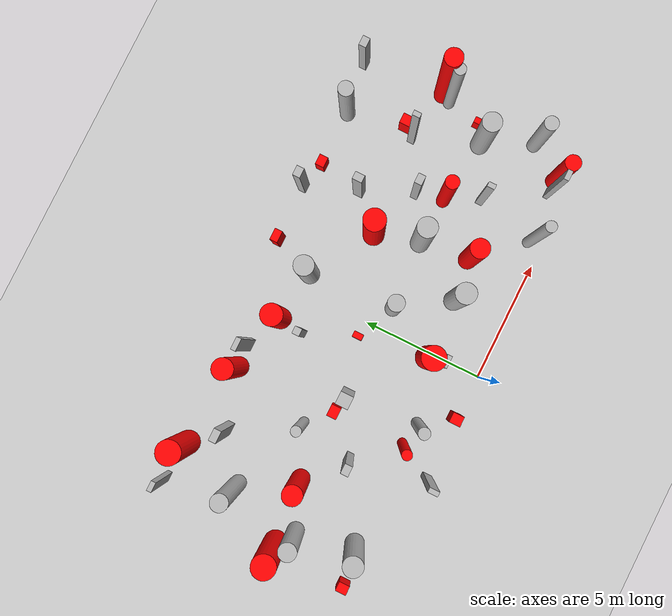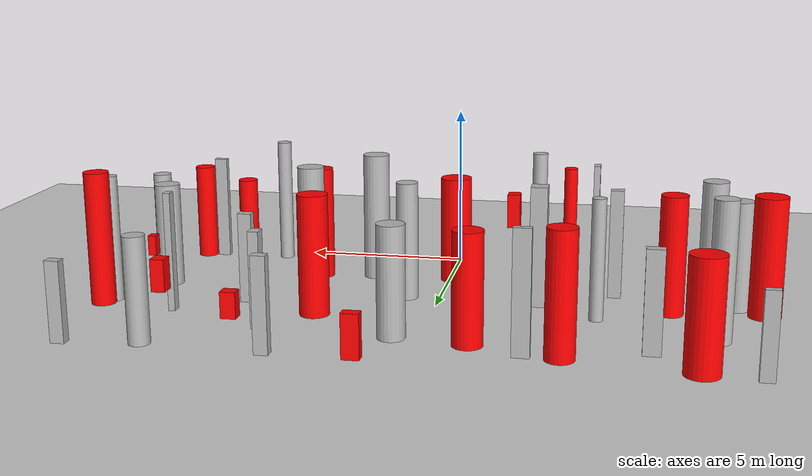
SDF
<sdf version="1.7">
 <world name="default">
  <model name="ground_plane">
   <static>1</static>
   <link name="link">
    <collision name="collision">
     <geometry><plane><normal>0 0 1</normal><size>100 100</size></plane></geometry>
     <surface>
      <contact><collide_bitmask>65535</collide_bitmask></contact>
      <friction><ode><mu>100</mu><mu2>50</mu2></ode></friction>
     </surface>
    </collision>
    <visual name="visual">
     <cast_shadows>0</cast_shadows>
     <geometry><plane><normal>0 0 1</normal><size>100 100</size></plane></geometry>
     <material>
      <script><uri>file://media/materials/scripts/gazebo.material</uri><name>Gazebo/Grey</name></script>
     </material>
    </visual>
   </link>
  </model>
  <model name="cylinder_0_0.7_0.7_3.5">
   <static>true</static>
   <pose>0.9762700785464951 4.30378732744839 1.7724415914984484 0 0 0</pose>
   <link name="link">
    <visual name="visual">
     <geometry>
      <cylinder><radius>0.3270964398016714</radius><length>3.5448831829968968</length></cylinder>
     </geometry>
    </visual>
   </link>
  </model>
  <model name="cylinder_2_0.4_0.4_3.9">
   <static>true</static>
   <pose>5.834500761653292 0.5778983950580887 1.9627983191463305 0 0 0</pose>
   <link name="link">
    <visual name="visual">
     <geometry>
      <cylinder><radius>0.2213108174593661</radius><length>3.925596638292661</length></cylinder>
     </geometry>
    </visual>
   </link>
  </model>
  <model name="cylinder_4_0.5_0.5_3.8">
   <static>true</static>
   <pose>9.572366844655281 5.983171284334471 1.8902645881432276 0 0 0</pose>
   <link name="link">
    <visual name="visual">
     <geometry>
      <cylinder><radius>0.23548232776067998</radius><length>3.7805291762864552</length></cylinder>
     </geometry>
    </visual>
   </link>
  </model>
  <model name="cylinder_6_0.4_0.4_3.6">
   <static>true</static>
   <pose>-4.70888775790746 5.484673788684333 1.7842169744343241 0 0 0</pose>
   <link name="link">
    <visual name="visual">
     <geometry>
      <cylinder><radius>0.20563694013090655</radius><length>3.5684339488686483</length></cylinder>
     </geometry>
    </visual>
   </link>
  </model>
  <model name="cylinder_7_0.8_0.8_3.9">
   <static>true</static>
   <pose>2.352709941517542 2.2419144544484286 1.9718740392573122 0 0 0</pose>
   <link name="link">
    <visual name="visual">
     <geometry>
      <cylinder><radius>0.404546089731045</radius><length>3.9437480785146244</length></cylinder>
     </geometry>
    </visual>
   </link>
  </model>
  <model name="cylinder_9_0.5_0.5_4.0">
   <static>true</static>
   <pose>-2.725784581147548 1.4039354083575937 1.994186919029613 0 0 0</pose>
   <link name="link">
    <visual name="visual">
     <geometry>
      <cylinder><radius>0.23061344322440844</radius><length>3.988373838059226</length></cylinder>
     </geometry>
    </visual>
   </link>
  </model>
  <model name="cylinder_11_0.7_0.7_4.0">
   <static>true</static>
   <pose>-8.057974484138775 6.758898149976076 1.988229732506698 0 0 0</pose>
   <link name="link">
    <visual name="visual">
     <geometry>
      <cylinder><radius>0.3405953604943105</radius><length>3.976459465013396</length></cylinder>
     </geometry>
    </visual>
   </link>
  </model>
  <model name="cylinder_12_0.6_0.6_3.0">
   <static>true</static>
   <pose>9.535221763806742 2.0969103949009202 1.5195938961271604 0 0 0</pose>
   <link name="link">
    <visual name="visual">
     <geometry>
      <cylinder><radius>0.2848420887729229</radius><length>3.039187792254321</length></cylinder>
     </geometry>
    </visual>
   </link>
  </model>
  <model name="cylinder_14_0.7_0.7_3.3">
   <static>true</static>
   <pose>-8.717050073024312 3.849442387400398 1.6326947454697227 0 0 0</pose>
   <link name="link">
    <visual name="visual">
     <geometry>
      <cylinder><radius>0.3569744160400099</radius><length>3.2653894909394454</length></cylinder>
     </geometry>
    </visual>
   </link>
  </model>
  <model name="cylinder_15_0.8_0.8_3.3">
   <static>true</static>
   <pose>-8.121189784831166 1.5189299111235854 1.6592844762256618 0 0 0</pose>
   <link name="link">
    <visual name="visual">
     <geometry>
      <cylinder><radius>0.4002231139891045</radius><length>3.3185689524513236</length></cylinder>
     </geometry>
    </visual>
   </link>
  </model>
  <model name="cylinder_19_0.8_0.8_4.0">
   <static>true</static>
   <pose>3.850631801555318 4.50508559639281 1.9780418173616119 0 0 0</pose>
   <link name="link">
    <visual name="visual">
     <geometry>
      <cylinder><radius>0.3931970597688912</radius><length>3.9560836347232238</length></cylinder>
     </geometry>
    </visual>
   </link>
  </model>
  <model name="cylinder_23_0.6_0.6_3.0">
   <static>true</static>
   <pose>7.327646518572585 9.510430100057718 1.505857042092501 0 0 0</pose>
   <link name="link">
    <visual name="visual">
     <geometry>
      <cylinder><radius>0.30799341934350916</radius><length>3.011714084185002</length></cylinder>
     </geometry>
    </visual>
   </link>
  </model>
  <model name="cylinder_25_0.8_0.8_3.2">
   <static>true</static>
   <pose>8.561625869311818 4.088288038470655 1.5823470782489564 0 0 0</pose>
   <link name="link">
    <visual name="visual">
     <geometry>
      <cylinder><radius>0.386443520449929</radius><length>3.1646941564979127</length></cylinder>
     </geometry>
    </visual>
   </link>
  </model>
  <model name="cylinder_28_0.8_0.8_3.2">
   <static>true</static>
   <pose>0.731584222174444 7.933425860806842 1.608448492199237 0 0 0</pose>
   <link name="link">
    <visual name="visual">
     <geometry>
      <cylinder><radius>0.3989234609300303</radius><length>3.216896984398474</length></cylinder>
     </geometry>
    </visual>
   </link>
  </model>
  <model name="box_2_0.5_0.2_3.5">
   <static>true</static>
   <pose>-2.8877452430008876 8.80863890505626 1.7486636198505474 0 0 0</pose>
   <link name="link">
    <visual name="visual"><geometry><box><size>0.5 0.2 3.5</size></box></geometry></visual>
   </link>
  </model>
  <model name="box_4_0.4_0.3_2.7">
   <static>true</static>
   <pose>5.5739079188220675 5.5481512369750625 1.3738131379325615 0 0 0</pose>
   <link name="link">
    <visual name="visual"><geometry><box><size>0.4 0.3 2.7</size></box></geometry></visual>
   </link>
  </model>
  <model name="box_5_0.5_0.3_2.9">
   <static>true</static>
   <pose>-6.257382164983105 8.079679098564739 1.4569114216457657 0 0 0</pose>
   <link name="link">
    <visual name="visual"><geometry><box><size>0.5 0.3 2.9</size></box></geometry></visual>
   </link>
  </model>
  <model name="box_7_0.4_0.3_2.3">
   <static>true</static>
   <pose>9.485124256361004 9.806900031217879 1.1629544260466054 0 0 0</pose>
   <link name="link">
    <visual name="visual"><geometry><box><size>0.4 0.3 2.3</size></box></geometry></visual>
   </link>
  </model>
  <model name="box_8_0.4_0.3_3.3">
   <static>true</static>
   <pose>-5.17162759846852 3.2500914306535194 1.6658591175591877 0 0 0</pose>
   <link name="link">
    <visual name="visual"><geometry><box><size>0.4 0.3 3.3</size></box></geometry></visual>
   </link>
  </model>
  <model name="box_10_0.3_0.4_2.8">
   <static>true</static>
   <pose>4.614181982549523 7.6344042466767945 1.3790568960774285 0 0 0</pose>
   <link name="link">
    <visual name="visual"><geometry><box><size>0.3 0.4 2.8</size></box></geometry></visual>
   </link>
  </model>
  <model name="box_13_0.5_0.5_3.6">
   <static>true</static>
   <pose>-2.962140076139148 4.428133359199048 1.8130538632474607 0 0 0</pose>
   <link name="link">
    <visual name="visual"><geometry><box><size>0.5 0.5 3.6</size></box></geometry></visual>
   </link>
  </model>
  <model name="box_14_0.5_0.2_2.3">
   <static>true</static>
   <pose>-0.0444618434931634 1.6216385934412614 1.1690254061291614 0 0 0</pose>
   <link name="link">
    <visual name="visual"><geometry><box><size>0.5 0.2 2.3</size></box></geometry></visual>
   </link>
  </model>
  <model name="box_15_0.3_0.3_2.5">
   <static>true</static>
   <pose>-1.525872930890543 7.142498350091348 1.271252076761864 0 0 0</pose>
   <link name="link">
    <visual name="visual"><geometry><box><size>0.3 0.3 2.5</size></box></geometry></visual>
   </link>
  </model>
  <model name="box_16_0.2_0.3_3.1">
   <static>true</static>
   <pose>6.448134767113807 3.068423222272738 1.5369230010823904 0 0 0</pose>
   <link name="link">
    <visual name="visual"><geometry><box><size>0.2 0.3 3.1</size></box></geometry></visual>
   </link>
  </model>
  <model name="box_18_0.4_0.3_2.7">
   <static>true</static>
   <pose>3.815695523130591 9.746975141479364 1.3645446259967866 0 0 0</pose>
   <link name="link">
    <visual name="visual"><geometry><box><size>0.4 0.3 2.7</size></box></geometry></visual>
   </link>
  </model>
  <model name="box_19_0.4_0.2_2.4">
   <static>true</static>
   <pose>-9.063872905756226 9.414628855412658 1.1785799680576563 0 0 0</pose>
   <link name="link">
    <visual name="visual"><geometry><box><size>0.4 0.2 2.4</size></box></geometry></visual>
   </link>
  </model>
  <model name="box_24_0.2_0.3_3.5">
   <static>true</static>
   <pose>7.476643566694364 6.679632877532637 1.7712254629659103 0 0 0</pose>
   <link name="link">
    <visual name="visual"><geometry><box><size>0.2 0.3 3.5</size></box></geometry></visual>
   </link>
  </model>
  <model name="box_26_0.2_0.4_3.4">
   <static>true</static>
   <pose>-4.467005395816209 0.1268583864760835 1.706410577667011 0 0 0</pose>
   <link name="link">
    <visual name="visual"><geometry><box><size>0.2 0.4 3.4</size></box></geometry></visual>
   </link>
  </model>
  <model name="box_27_0.4_0.2_3.3">
   <static>true</static>
   <pose>7.972753368165325 0.7434025589741484 1.6736532695846353 0 0 0</pose>
   <link name="link">
    <visual name="visual"><geometry><box><size>0.4 0.2 3.3</size></box></geometry></visual>
   </link>
  </model>
  <model name="dynamic_cylinder_0_0.8_0.8_3.5">
   <static>true</static>
   <pose>4.094643888333403 2.459366459566086 1.7438822797488533 0 0 0</pose>
   <link name="link">
    <visual name="visual">
     <geometry>
      <cylinder><radius>0.3818785718679624</radius><length>3.4877645594977067</length></cylinder>
     </geometry>
     <material><ambient>1 0 0 1</ambient><diffuse>1 0 0 1</diffuse><specular>0.5 0.5 0.5 1</specular></material>
    </visual>
   </link>
   <plugin name="obstacle_motion" filename="/home/he/quad/navigation/DRL-robot-navigation/catkin_ws/src/multi_robot_scenario/plugins/libobstaclePathPlugin.so">
    <orientation>false</orientation>
    <loop>0</loop>
    <velocity>0.01331611324646731</velocity>
    <path>
     <waypoint>4.094643888333403 2.459366459566086 1.7438822797488533</waypoint>
     <waypoint>9.165586676842118 6.485329394064571 1.7438822797488533</waypoint>
    </path>
   </plugin>
  </model>
  <model name="dynamic_cylinder_1_0.7_0.7_4.0">
   <static>true</static>
   <pose>9.781761507137073 6.362021000480581 1.9835233959896614 0 0 0</pose>
   <link name="link">
    <visual name="visual">
     <geometry>
      <cylinder><radius>0.36669878758172225</radius><length>3.967046791979323</length></cylinder>
     </geometry>
     <material><ambient>1 0 0 1</ambient><diffuse>1 0 0 1</diffuse><specular>0.5 0.5 0.5 1</specular></material>
    </visual>
   </link>
   <plugin name="obstacle_motion" filename="/home/he/quad/navigation/DRL-robot-navigation/catkin_ws/src/multi_robot_scenario/plugins/libobstaclePathPlugin.so">
    <orientation>false</orientation>
    <loop>0</loop>
    <velocity>0.8748423619393388</velocity>
    <path>
     <waypoint>9.781761507137073 6.362021000480581 1.9835233959896614</waypoint>
     <waypoint>-6.959059499111559 5.681172289343081 1.9835233959896614</waypoint>
    </path>
   </plugin>
  </model>
  <model name="dynamic_cylinder_3_0.9_0.9_3.2">
   <static>true</static>
   <pose>-1.3963828472189181 8.181855140571265 1.6009832142121017 0 0 0</pose>
   <link name="link">
    <visual name="visual">
     <geometry>
      <cylinder><radius>0.43374617735747417</radius><length>3.2019664284242033</length></cylinder>
     </geometry>
     <material><ambient>1 0 0 1</ambient><diffuse>1 0 0 1</diffuse><specular>0.5 0.5 0.5 1</specular></material>
    </visual>
   </link>
   <plugin name="obstacle_motion" filename="/home/he/quad/navigation/DRL-robot-navigation/catkin_ws/src/multi_robot_scenario/plugins/libobstaclePathPlugin.so">
    <orientation>false</orientation>
    <loop>0</loop>
    <velocity>0.6937233386722279</velocity>
    <path>
     <waypoint>-1.3963828472189181 8.181855140571265 1.6009832142121017</waypoint>
     <waypoint>3.954568035699186 9.40750655674433 1.6009832142121017</waypoint>
    </path>
   </plugin>
  </model>
  <model name="dynamic_cylinder_4_1.0_1.0_3.3">
   <static>true</static>
   <pose>-0.1890189041213457 2.193729302942426 1.6423898525154772 0 0 0</pose>
   <link name="link">
    <visual name="visual">
     <geometry>
      <cylinder><radius>0.4790379086731091</radius><length>3.2847797050309544</length></cylinder>
     </geometry>
     <material><ambient>1 0 0 1</ambient><diffuse>1 0 0 1</diffuse><specular>0.5 0.5 0.5 1</specular></material>
    </visual>
   </link>
   <plugin name="obstacle_motion" filename="/home/he/quad/navigation/DRL-robot-navigation/catkin_ws/src/multi_robot_scenario/plugins/libobstaclePathPlugin.so">
    <orientation>false</orientation>
    <loop>0</loop>
    <velocity>0.44462536010242004</velocity>
    <path>
     <waypoint>-0.1890189041213457 2.193729302942426 1.6423898525154772</waypoint>
     <waypoint>-0.46771542865347904 -7.758562382501697 1.6423898525154772</waypoint>
    </path>
   </plugin>
  </model>
  <model name="dynamic_cylinder_7_0.9_0.9_3.6">
   <static>true</static>
   <pose>3.3190282150883217 6.334513740597828 1.77920501327294 0 0 0</pose>
   <link name="link">
    <visual name="visual">
     <geometry><cylinder><radius>0.4405871721120336</radius><length>3.55841002654588</length></cylinder></geometry>
     <material><ambient>1 0 0 1</ambient><diffuse>1 0 0 1</diffuse><specular>0.5 0.5 0.5 1</specular></material>
    </visual>
   </link>
   <plugin name="obstacle_motion" filename="/home/he/quad/navigation/DRL-robot-navigation/catkin_ws/src/multi_robot_scenario/plugins/libobstaclePathPlugin.so">
    <orientation>false</orientation>
    <loop>0</loop>
    <velocity>0.7181865260891839</velocity>
    <path>
     <waypoint>3.3190282150883217 6.334513740597828 1.77920501327294</waypoint>
     <waypoint>9.149770868956988 4.177657985216827 1.77920501327294</waypoint>
    </path>
   </plugin>
  </model>
  <model name="dynamic_cylinder_8_1.0_1.0_3.5">
   <static>true</static>
   <pose>-9.47357329431817 4.377578305428489 1.7747092916499079 0 0 0</pose>
   <link name="link">
    <visual name="visual">
     <geometry>
      <cylinder><radius>0.4768742871897456</radius><length>3.5494185832998157</length></cylinder>
     </geometry>
     <material><ambient>1 0 0 1</ambient><diffuse>1 0 0 1</diffuse><specular>0.5 0.5 0.5 1</specular></material>
    </visual>
   </link>
   <plugin name="obstacle_motion" filename="/home/he/quad/navigation/DRL-robot-navigation/catkin_ws/src/multi_robot_scenario/plugins/libobstaclePathPlugin.so">
    <orientation>false</orientation>
    <loop>0</loop>
    <velocity>0.704643698826602</velocity>
    <path>
     <waypoint>-9.47357329431817 4.377578305428489 1.7747092916499079</waypoint>
     <waypoint>4.936676218707131 0.24698291311196208 1.7747092916499079</waypoint>
    </path>
   </plugin>
  </model>
  <model name="dynamic_cylinder_9_0.4_0.4_3.6">
   <static>true</static>
   <pose>-3.7053445599904844 1.5721996023420033 1.7878764225152761 0 0 0</pose>
   <link name="link">
    <visual name="visual">
     <geometry>
      <cylinder><radius>0.20277439826710983</radius><length>3.5757528450305522</length></cylinder>
     </geometry>
     <material><ambient>1 0 0 1</ambient><diffuse>1 0 0 1</diffuse><specular>0.5 0.5 0.5 1</specular></material>
    </visual>
   </link>
   <plugin name="obstacle_motion" filename="/home/he/quad/navigation/DRL-robot-navigation/catkin_ws/src/multi_robot_scenario/plugins/libobstaclePathPlugin.so">
    <orientation>false</orientation>
    <loop>0</loop>
    <velocity>0.1861301663330024</velocity>
    <path>
     <waypoint>-3.7053445599904844 1.5721996023420033 1.7878764225152761</waypoint>
     <waypoint>-4.625012258465291 -7.404747548632374 1.7878764225152761</waypoint>
    </path>
   </plugin>
  </model>
  <model name="dynamic_cylinder_10_0.6_0.6_3.0">
   <static>true</static>
   <pose>8.555061586474082 0.7428083816648119 1.5212448041190791 0 0 0</pose>
   <link name="link">
    <visual name="visual">
     <geometry>
      <cylinder><radius>0.31449612399362964</radius><length>3.0424896082381583</length></cylinder>
     </geometry>
     <material><ambient>1 0 0 1</ambient><diffuse>1 0 0 1</diffuse><specular>0.5 0.5 0.5 1</specular></material>
    </visual>
   </link>
   <plugin name="obstacle_motion" filename="/home/he/quad/navigation/DRL-robot-navigation/catkin_ws/src/multi_robot_scenario/plugins/libobstaclePathPlugin.so">
    <orientation>false</orientation>
    <loop>0</loop>
    <velocity>0.1175459407560635</velocity>
    <path>
     <waypoint>8.555061586474082 0.7428083816648119 1.5212448041190791</waypoint>
     <waypoint>6.8584222425497074 9.664054765802362 1.5212448041190791</waypoint>
    </path>
   </plugin>
  </model>
  <model name="dynamic_cylinder_12_0.8_0.8_3.5">
   <static>true</static>
   <pose>-6.794801597268099 4.5922276607070565 1.7660462045860144 0 0 0</pose>
   <link name="link">
    <visual name="visual">
     <geometry>
      <cylinder><radius>0.39328958823968374</radius><length>3.5320924091720287</length></cylinder>
     </geometry>
     <material><ambient>1 0 0 1</ambient><diffuse>1 0 0 1</diffuse><specular>0.5 0.5 0.5 1</specular></material>
    </visual>
   </link>
   <plugin name="obstacle_motion" filename="/home/he/quad/navigation/DRL-robot-navigation/catkin_ws/src/multi_robot_scenario/plugins/libobstaclePathPlugin.so">
    <orientation>false</orientation>
    <loop>0</loop>
    <velocity>0.9427794095611935</velocity>
    <path>
     <waypoint>-6.794801597268099 4.5922276607070565 1.7660462045860144</waypoint>
     <waypoint>-6.29767222241539 -9.875931705812679 1.7660462045860144</waypoint>
    </path>
   </plugin>
  </model>
  <model name="dynamic_cylinder_14_1.0_1.0_3.2">
   <static>true</static>
   <pose>-7.496766840773141 9.284195132320896 1.5757430039030964 0 0 0</pose>
   <link name="link">
    <visual name="visual">
     <geometry>
      <cylinder><radius>0.4890409984235557</radius><length>3.151486007806193</length></cylinder>
     </geometry>
     <material><ambient>1 0 0 1</ambient><diffuse>1 0 0 1</diffuse><specular>0.5 0.5 0.5 1</specular></material>
    </visual>
   </link>
   <plugin name="obstacle_motion" filename="/home/he/quad/navigation/DRL-robot-navigation/catkin_ws/src/multi_robot_scenario/plugins/libobstaclePathPlugin.so">
    <orientation>false</orientation>
    <loop>0</loop>
    <velocity>0.16207298502996548</velocity>
    <path>
     <waypoint>-7.496766840773141 9.284195132320896 1.5757430039030964</waypoint>
     <waypoint>-6.673507725607227 1.0537294221642775 1.5757430039030964</waypoint>
    </path>
   </plugin>
  </model>
  <model name="dynamic_cylinder_15_0.8_0.8_3.6">
   <static>true</static>
   <pose>-3.9007163408455554 8.828785833678864 1.7768830368530382 0 0 0</pose>
   <link name="link">
    <visual name="visual">
     <geometry>
      <cylinder><radius>0.41660735928010395</radius><length>3.5537660737060763</length></cylinder>
     </geometry>
     <material><ambient>1 0 0 1</ambient><diffuse>1 0 0 1</diffuse><specular>0.5 0.5 0.5 1</specular></material>
    </visual>
   </link>
   <plugin name="obstacle_motion" filename="/home/he/quad/navigation/DRL-robot-navigation/catkin_ws/src/multi_robot_scenario/plugins/libobstaclePathPlugin.so">
    <orientation>false</orientation>
    <loop>0</loop>
    <velocity>0.11389410481136342</velocity>
    <path>
     <waypoint>-3.9007163408455554 8.828785833678864 1.7768830368530382</waypoint>
     <waypoint>-0.7839391541361884 -7.407619029664798 1.7768830368530382</waypoint>
    </path>
   </plugin>
  </model>
  <model name="dynamic_cylinder_17_0.6_0.6_3.5">
   <static>true</static>
   <pose>5.8256310446498745 4.42396225861806 1.738041992984116 0 0 0</pose>
   <link name="link">
    <visual name="visual">
     <geometry>
      <cylinder><radius>0.27515617592515357</radius><length>3.476083985968232</length></cylinder>
     </geometry>
     <material><ambient>1 0 0 1</ambient><diffuse>1 0 0 1</diffuse><specular>0.5 0.5 0.5 1</specular></material>
    </visual>
   </link>
   <plugin name="obstacle_motion" filename="/home/he/quad/navigation/DRL-robot-navigation/catkin_ws/src/multi_robot_scenario/plugins/libobstaclePathPlugin.so">
    <orientation>false</orientation>
    <loop>0</loop>
    <velocity>0.5231559899920758</velocity>
    <path>
     <waypoint>5.8256310446498745 4.42396225861806 1.738041992984116</waypoint>
     <waypoint>2.8772807344519347 0.03546261399890405 1.738041992984116</waypoint>
    </path>
   </plugin>
  </model>
  <model name="dynamic_box_0_0.5_0.3_1.3">
   <static>true</static>
   <pose>1.4310039083386865 9.671108363424409 0.6378127007249669 0 0 0</pose>
   <link name="link">
    <visual name="visual">
     <geometry><box><size>0.49365709430691684 0.31885536799859615 1.2692471190327554</size></box></geometry>
     <material><ambient>1 0 0 1</ambient><diffuse>1 0 0 1</diffuse><specular>0.5 0.5 0.5 1</specular></material>
    </visual>
   </link>
   <plugin name="obstacle_motion" filename="/home/he/quad/navigation/DRL-robot-navigation/catkin_ws/src/multi_robot_scenario/plugins/libobstaclePathPlugin.so">
    <orientation>false</orientation>
    <loop>0</loop>
    <velocity>0.7684994455214147</velocity>
    <path>
     <waypoint>1.4310039083386865 9.671108363424409 0.6378127007249669</waypoint>
     <waypoint>-7.090997186022681 5.582219880387109 2.2448785299320533</waypoint>
    </path>
   </plugin>
  </model>
  <model name="dynamic_box_4_0.4_0.4_1.1">
   <static>true</static>
   <pose>-1.826452050906294 0.3686461988533889 1.8781581986418592 0 0 0</pose>
   <link name="link">
    <visual name="visual">
     <geometry><box><size>0.40776638805893817 0.44590694167236056 1.0955850196361632</size></box></geometry>
     <material><ambient>1 0 0 1</ambient><diffuse>1 0 0 1</diffuse><specular>0.5 0.5 0.5 1</specular></material>
    </visual>
   </link>
   <plugin name="obstacle_motion" filename="/home/he/quad/navigation/DRL-robot-navigation/catkin_ws/src/multi_robot_scenario/plugins/libobstaclePathPlugin.so">
    <orientation>false</orientation>
    <loop>0</loop>
    <velocity>0.7433030456407294</velocity>
    <path>
     <waypoint>-1.826452050906294 0.3686461988533889 1.8781581986418592</waypoint>
     <waypoint>-6.703888203049244 -9.456044111841596 1.1827999081914524</waypoint>
    </path>
   </plugin>
  </model>
  <model name="dynamic_box_6_0.4_0.4_0.7">
   <static>true</static>
   <pose>4.798924840968796 9.339118959334666 1.19747086648288 0 0 0</pose>
   <link name="link">
    <visual name="visual">
     <geometry><box><size>0.42643516795896935 0.36076489438283355 0.7371896320516759</size></box></geometry>
     <material><ambient>1 0 0 1</ambient><diffuse>1 0 0 1</diffuse><specular>0.5 0.5 0.5 1</specular></material>
    </visual>
   </link>
   <plugin name="obstacle_motion" filename="/home/he/quad/navigation/DRL-robot-navigation/catkin_ws/src/multi_robot_scenario/plugins/libobstaclePathPlugin.so">
    <orientation>false</orientation>
    <loop>0</loop>
    <velocity>0.5917522335356693</velocity>
    <path>
     <waypoint>4.798924840968796 9.339118959334666 1.19747086648288</waypoint>
     <waypoint>-2.892403698778976 -9.12275140467235 0.7370034290634921</waypoint>
    </path>
   </plugin>
  </model>
  <model name="dynamic_box_9_0.5_0.4_0.9">
   <static>true</static>
   <pose>-3.6319413077882494 4.5789539228684575 1.5957140190493329 0 0 0</pose>
   <link name="link">
    <visual name="visual">
     <geometry><box><size>0.4778797640421752 0.3985290783813231 0.9146441491748876</size></box></geometry>
     <material><ambient>1 0 0 1</ambient><diffuse>1 0 0 1</diffuse><specular>0.5 0.5 0.5 1</specular></material>
    </visual>
   </link>
   <plugin name="obstacle_motion" filename="/home/he/quad/navigation/DRL-robot-navigation/catkin_ws/src/multi_robot_scenario/plugins/libobstaclePathPlugin.so">
    <orientation>false</orientation>
    <loop>0</loop>
    <velocity>0.7106366981582054</velocity>
    <path>
     <waypoint>-3.6319413077882494 4.5789539228684575 1.5957140190493329</waypoint>
     <waypoint>5.78071945118667 6.603931596701038 2.1431917931900077</waypoint>
    </path>
   </plugin>
  </model>
  <model name="dynamic_box_13_0.2_0.3_0.6">
   <static>true</static>
   <pose>8.889483288758694 4.567579926537364 1.3425954940040299 0 0 0</pose>
   <link name="link">
    <visual name="visual">
     <geometry><box><size>0.2425601779220776 0.3085403717507418 0.6182361287358663</size></box></geometry>
     <material><ambient>1 0 0 1</ambient><diffuse>1 0 0 1</diffuse><specular>0.5 0.5 0.5 1</specular></material>
    </visual>
   </link>
   <plugin name="obstacle_motion" filename="/home/he/quad/navigation/DRL-robot-navigation/catkin_ws/src/multi_robot_scenario/plugins/libobstaclePathPlugin.so">
    <orientation>false</orientation>
    <loop>0</loop>
    <velocity>0.61680907250979</velocity>
    <path>
     <waypoint>8.889483288758694 4.567579926537364 1.3425954940040299</waypoint>
     <waypoint>5.543854568068811 -7.536407022909922 1.2380987708096178</waypoint>
    </path>
   </plugin>
  </model>
  <model name="dynamic_box_14_0.4_0.4_0.7">
   <static>true</static>
   <pose>-9.367891143591889 1.3683808573243201 1.5707132096792125 0 0 0</pose>
   <link name="link">
    <visual name="visual">
     <geometry><box><size>0.37624655741951696 0.4317812430898408 0.7047813619358524</size></box></geometry>
     <material><ambient>1 0 0 1</ambient><diffuse>1 0 0 1</diffuse><specular>0.5 0.5 0.5 1</specular></material>
    </visual>
   </link>
   <plugin name="obstacle_motion" filename="/home/he/quad/navigation/DRL-robot-navigation/catkin_ws/src/multi_robot_scenario/plugins/libobstaclePathPlugin.so">
    <orientation>false</orientation>
    <loop>0</loop>
    <velocity>0.5268314531457945</velocity>
    <path>
     <waypoint>-9.367891143591889 1.3683808573243201 1.5707132096792125</waypoint>
     <waypoint>9.231502886001628 -9.535267465822766 1.414598222905184</waypoint>
    </path>
   </plugin>
  </model>
  <model name="dynamic_box_17_0.4_0.5_1.0">
   <static>true</static>
   <pose>7.67650892889116 7.068986666979143 1.1978724325534147 0 0 0</pose>
   <link name="link">
    <visual name="visual">
     <geometry><box><size>0.4100611306204809 0.4575432705805562 0.9707321549552316</size></box></geometry>
     <material><ambient>1 0 0 1</ambient><diffuse>1 0 0 1</diffuse><specular>0.5 0.5 0.5 1</specular></material>
    </visual>
   </link>
   <plugin name="obstacle_motion" filename="/home/he/quad/navigation/DRL-robot-navigation/catkin_ws/src/multi_robot_scenario/plugins/libobstaclePathPlugin.so">
    <orientation>false</orientation>
    <loop>0</loop>
    <velocity>0.5073329104860353</velocity>
    <path>
     <waypoint>7.67650892889116 7.068986666979143 1.1978724325534147</waypoint>
     <waypoint>5.142595556181313 9.726581260031779 1.5380093013802785</waypoint>
    </path>
   </plugin>
  </model>
  <model name="dynamic_box_19_0.2_0.4_1.3">
   <static>true</static>
   <pose>-0.6578288490357878 5.060847801380657 0.6498567283068193 0 0 0</pose>
   <link name="link">
    <visual name="visual">
     <geometry><box><size>0.24741792008035773 0.39952448724261 1.2759584418813597</size></box></geometry>
     <material><ambient>1 0 0 1</ambient><diffuse>1 0 0 1</diffuse><specular>0.5 0.5 0.5 1</specular></material>
    </visual>
   </link>
   <plugin name="obstacle_motion" filename="/home/he/quad/navigation/DRL-robot-navigation/catkin_ws/src/multi_robot_scenario/plugins/libobstaclePathPlugin.so">
    <orientation>false</orientation>
    <loop>0</loop>
    <velocity>0.5380725811007652</velocity>
    <path>
     <waypoint>-0.6578288490357878 5.060847801380657 0.6498567283068193</waypoint>
     <waypoint>-1.307349512178991 -3.2483724934225684 1.8563073266003336</waypoint>
    </path>
   </plugin>
  </model>
 </world>
</sdf>
